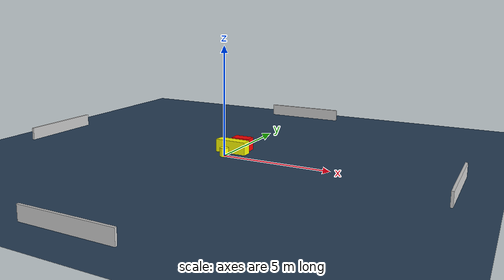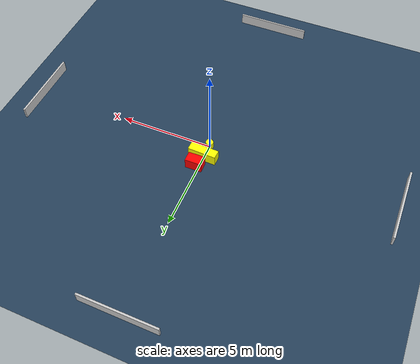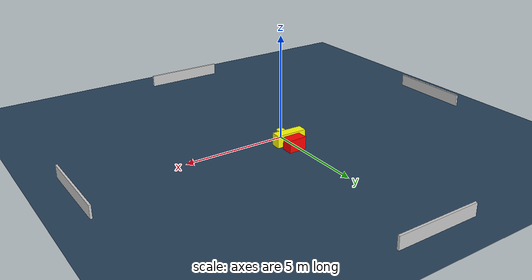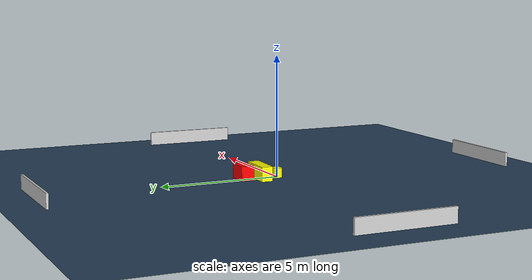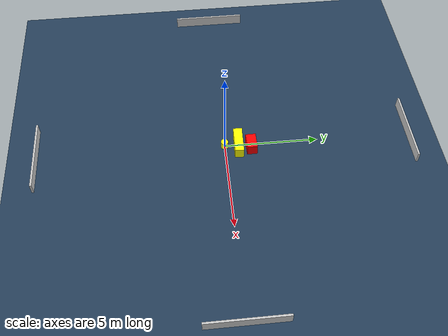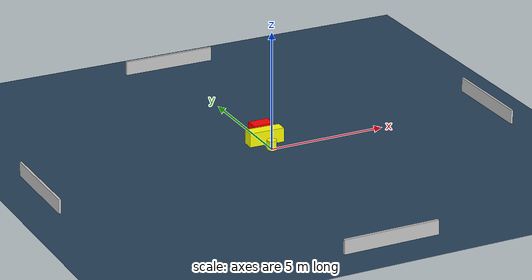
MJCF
<?xml version="1.0" ?>
<mujoco model="generated_environment">
  <option timestep="0.01" integrator="RK4" cone="elliptic"/>
  <default>
    <geom density="1"/>
  </default>
  <asset>
    <texture builtin="gradient" height="3072" name="skybox" rgb1="0.3 0.5 0.7" rgb2="0 0 0" type="skybox" width="512"/>
    <texture builtin="checker" height="300" name="groundplane" rgb1="0.2 0.3 0.4" rgb2="0.1 0.2 0.3" type="2d" width="300"/>
    <material name="groundplane" reflectance="0.2" texrepeat="5 5" texture="groundplane"/>
  </asset>
  <worldbody>
    <light dir="0 0 -1" directional="true" pos="0 0 1.5"/>
    <geom condim="3" friction="0.5 0.005 0.001" material="groundplane" name="floor" pos="0 0 0" size="0 0 0.05" type="plane"/>
    <body name="walls">
      <geom name="wall_1" condim="4" pos="-10.0 0.0 0.3" rgba="0.800000011920929 0.800000011920929 0.800000011920929 1.0" size="0.05 2.0 0.3" type="box"/>
      <geom name="wall_2" condim="4" pos="10.0 0.0 0.3" rgba="0.800000011920929 0.800000011920929 0.800000011920929 1.0" size="0.05 2.0 0.3" type="box"/>
      <geom name="wall_3" condim="4" pos="0.0 -10.0 0.3" rgba="0.800000011920929 0.800000011920929 0.800000011920929 1.0" size="2.0 0.05 0.3" type="box"/>
      <geom name="wall_4" condim="4" pos="0.0 10.0 0.3" rgba="0.800000011920929 0.800000011920929 0.800000011920929 1.0" size="2.0 0.05 0.3" type="box"/>
    </body>
    <body name="robot">
      <joint name="joint_x" type="slide" pos="0 0 0" axis="1 0 0"/>
      <joint name="joint_y" type="slide" pos="0 0 0" axis="0 1 0"/>
      <geom name="robot" type="cylinder" pos="0.0 0.0 0.2" size="0.2 0.2 0.0" mass="5.0" friction="1.0 0.005 0.0001" condim="4" rgba="1.0 1.0 0.0 1.0"/>
    </body>
    <body name="obstacle_1_movable">
      <geom name="obstacle_1_movable" condim="4" pos="0.042817141412080456 0.7386835763356795 0.3" euler="0 0 268.0185319941565" friction="0.0 0.005 0.001" rgba="1.0 1.0 0.0 1.0" size="0.2372689487247795 0.7484816591361327 0.3" type="box" mass="0.1"/>
      <joint type="free"/>
    </body>
    <body name="obstacle_2_static">
      <geom name="obstacle_2_static" condim="4" pos="0.2068952736172638 1.413554508786517 0.3" euler="0 0 90.95727273557044" friction="0.0 0.005 0.001" rgba="1.0 0.0 0.0 1.0" size="0.2695479743797477 0.43936082478472044 0.3" type="box"/>
    </body>
  </worldbody>
  <actuator>
    <motor name="actuator_x" joint="joint_x" gear="1" ctrlrange="-1 1"/>
    <motor name="actuator_y" joint="joint_y" gear="1" ctrlrange="-1 1"/>
  </actuator>
</mujoco>
